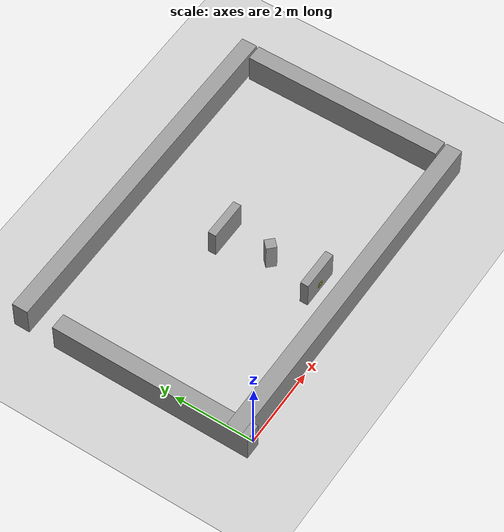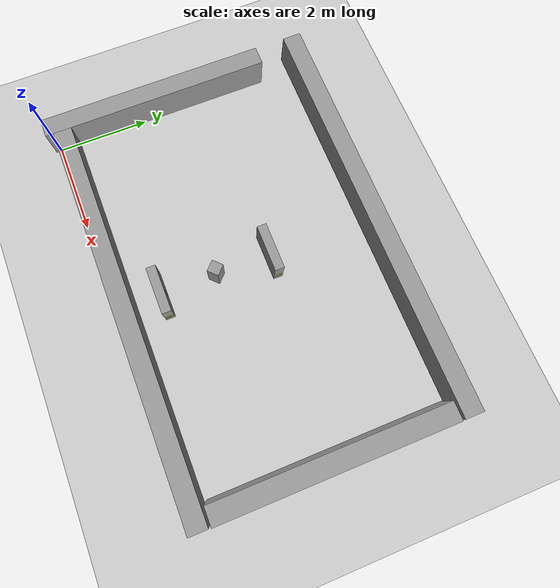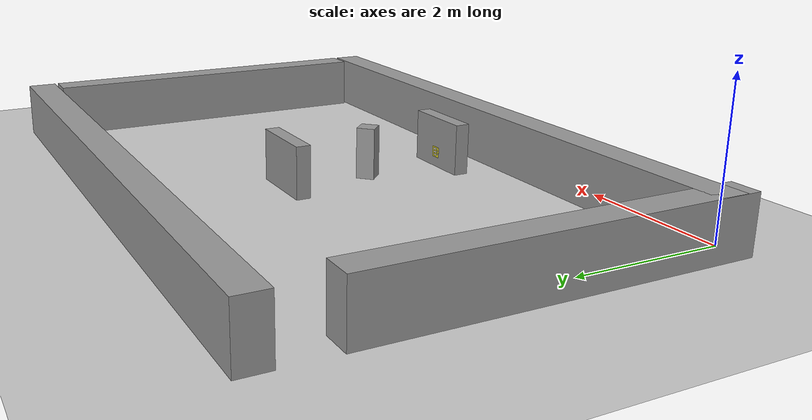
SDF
<sdf version="1.6">
 <world name="default">
  <model name="ground_plane">
   <static>1</static>
   <link name="link">
    <collision name="collision">
     <geometry><plane><normal>0 0 1</normal><size>100 100</size></plane></geometry>
     <surface><friction><ode><mu>100</mu><mu2>50</mu2></ode></friction></surface>
    </collision>
    <visual name="visual">
     <cast_shadows>0</cast_shadows>
     <geometry><plane><normal>0 0 1</normal><size>100 100</size></plane></geometry>
     <material>
      <script><uri>file://media/materials/scripts/gazebo.material</uri><name>Gazebo/Gray</name></script>
     </material>
    </visual>
   </link>
  </model>
  <model name="Untitled2">
   <pose>4.05 3 0 0 -0 0</pose>
   <link name="Wall_11">
    <collision name="Wall_11_Collision">
     <geometry><box><size>5 0.4 1</size></box></geometry>
     <pose>0 0 0.25 0 -0 0</pose>
    </collision>
    <visual name="Wall_11_Visual">
     <pose>0 0 0.25 0 -0 0</pose>
     <geometry><box><size>5 0.4 1</size></box></geometry>
     <material>
      <script><uri>file://media/materials/scripts/gazebo.material</uri><name>Gazebo/Gray</name></script>
      <ambient>1 1 1 1</ambient>
     </material>
     <meta><layer>0</layer></meta>
    </visual>
    <pose>-4.25 -0.62 0 0 -0 1.5708</pose>
   </link>
   <link name="Wall_13">
    <collision name="Wall_13_Collision">
     <geometry><box><size>5 0.4 1</size></box></geometry>
     <pose>0 0 0.25 0 -0 0</pose>
    </collision>
    <visual name="Wall_13_Visual">
     <pose>0 0 0.25 0 -0 0</pose>
     <geometry><box><size>5 0.4 1</size></box></geometry>
     <material>
      <script><uri>file://media/materials/scripts/gazebo.material</uri><name>Gazebo/Gray</name></script>
      <ambient>1 1 1 1</ambient>
     </material>
     <meta><layer>0</layer></meta>
    </visual>
    <pose>4.25 -0 0 0 -0 1.5708</pose>
   </link>
   <link name="Wall_15">
    <collision name="Wall_15_Collision">
     <geometry><box><size>8.88 0.4 1</size></box></geometry>
     <pose>0 0 0.25 0 -0 0</pose>
    </collision>
    <visual name="Wall_15_Visual">
     <pose>0 0 0.25 0 -0 0</pose>
     <geometry><box><size>8.88 0.4 1</size></box></geometry>
     <material>
      <script><uri>file://media/materials/scripts/gazebo.material</uri><name>Gazebo/Gray</name></script>
      <ambient>1 1 1 1</ambient>
     </material>
     <meta><layer>0</layer></meta>
    </visual>
    <pose>-0 2.75 0 0 -0 0</pose>
   </link>
   <link name="Wall_6">
    <collision name="Wall_6_Collision">
     <geometry><box><size>8.88 0.4 1</size></box></geometry>
     <pose>0 0 0.25 0 -0 0</pose>
    </collision>
    <visual name="Wall_6_Visual">
     <pose>0 0 0.25 0 -0 0</pose>
     <geometry><box><size>8.88 0.4 1</size></box></geometry>
     <material>
      <script><uri>file://media/materials/scripts/gazebo.material</uri><name>Gazebo/Gray</name></script>
      <ambient>1 1 1 1</ambient>
     </material>
     <meta><layer>0</layer></meta>
    </visual>
    <pose>-0 -2.75 0 0 -0 0</pose>
   </link>
   <static>1</static>
  </model>
  <model name="Untitled1_clone_0_clone_0">
   <pose>4.04 1.035 0 0 0 -1.5708</pose>
   <link name="Wall_0">
    <collision name="Wall_0_Collision">
     <geometry><box><size>1 0.2 1</size></box></geometry>
     <pose>0 0 0.2 0 -0 0</pose>
    </collision>
    <visual name="Wall_0_Visual">
     <pose>0 0 0.2 0 -0 0</pose>
     <geometry><box><size>1 0.2 1</size></box></geometry>
     <material>
      <script><uri>file://media/materials/scripts/gazebo.material</uri><name>Gazebo/Gray</name></script>
      <ambient>1 1 1 1</ambient>
     </material>
     <meta><layer>0</layer></meta>
    </visual>
    <pose>0 0 0 0 -0 1.5708</pose>
   </link>
   <static>1</static>
  </model>
  <model name="Untitled1_clone_0_clone_1">
   <pose>4.04 3.445 0 0 0 -1.5708</pose>
   <link name="Wall_0">
    <collision name="Wall_0_Collision">
     <geometry><box><size>1 0.2 1</size></box></geometry>
     <pose>0 0 0.2 0 -0 0</pose>
    </collision>
    <visual name="Wall_0_Visual">
     <pose>0 0 0.2 0 -0 0</pose>
     <geometry><box><size>1 0.2 1</size></box></geometry>
     <material>
      <script><uri>file://media/materials/scripts/gazebo.material</uri><name>Gazebo/Gray</name></script>
      <ambient>1 1 1 1</ambient>
     </material>
     <meta><layer>0</layer></meta>
    </visual>
    <pose>0 0 0 0 -0 1.5708</pose>
   </link>
   <static>1</static>
  </model>
  <model name="Untitled4">
   <pose>4.04 2.24 0 0 -0 0.785397</pose>
   <link name="Wall_19">
    <collision name="Wall_19_Collision">
     <geometry><box><size>0.25 0.25 1</size></box></geometry>
     <pose>0 0 0.2 0 -0 0</pose>
    </collision>
    <visual name="Wall_19_Visual">
     <pose>0 0 0.2 0 -0 0</pose>
     <geometry><box><size>0.25 0.25 1</size></box></geometry>
     <material>
      <script><uri>file://media/materials/scripts/gazebo.material</uri><name>Gazebo/Gray</name></script>
      <ambient>1 1 1 1</ambient>
     </material>
     <meta><layer>0</layer></meta>
    </visual>
   </link>
   <static>1</static>
  </model>
  <model name="labal_D">
   <link name="base">
    <inertial>
     <pose>-0.001086 -0.000137 -0.001593 0 -0 0</pose>
     <mass>0.0137688</mass>
     <inertia>
      <ixx>2.44128e-05</ixx>
      <ixy>-9.16282e-09</ixy>
      <ixz>4.39336e-07</ixz>
      <iyy>2.60674e-05</iyy>
      <iyz>-1.55543e-08</iyz>
      <izz>4.38445e-05</izz>
     </inertia>
    </inertial>
    <collision name="base_collision">
     <geometry>
      <mesh><scale>1 1 1</scale><uri>/home/tdt/catkin_ws/src/RoboRTS/small_car/meshes/base.STL</uri></mesh>
     </geometry>
    </collision>
    <collision name="base_fixed_joint_lump__labal_D_collision_1">
     <pose>0 0 0 1.5708 -0 0</pose>
     <geometry>
      <mesh><scale>1 1 1</scale><uri>/home/tdt/catkin_ws/src/RoboRTS/small_car/meshes/labal_D.STL</uri></mesh>
     </geometry>
    </collision>
    <visual name="base_visual">
     <geometry>
      <mesh><scale>1 1 1</scale><uri>/home/tdt/catkin_ws/src/RoboRTS/small_car/meshes/base.STL</uri></mesh>
     </geometry>
     <material>
      <script><name>Gazebo/Yellow</name><uri>file://media/materials/scripts/gazebo.material</uri></script>
     </material>
    </visual>
    <visual name="base_fixed_joint_lump__labal_D_visual_1">
     <pose>0 0 0 1.5708 -0 0</pose>
     <geometry>
      <mesh><scale>1 1 1</scale><uri>/home/tdt/catkin_ws/src/RoboRTS/small_car/meshes/labal_D.STL</uri></mesh>
     </geometry>
     <material>
      <script><name>Gazebo/White</name><uri>file://media/materials/scripts/gazebo.material</uri></script>
     </material>
    </visual>
   </link>
   <pose>4.04 0.935 0.2 0 -0 0</pose>
   <static>1</static>
  </model>
  <model name="labal_B">
   <link name="base">
    <inertial>
     <pose>-0.001086 -0.000137 -0.001593 0 -0 0</pose>
     <mass>0.0137688</mass>
     <inertia>
      <ixx>2.44128e-05</ixx>
      <ixy>-9.16282e-09</ixy>
      <ixz>4.39336e-07</ixz>
      <iyy>2.60674e-05</iyy>
      <iyz>-1.55543e-08</iyz>
      <izz>4.38445e-05</izz>
     </inertia>
    </inertial>
    <collision name="base_collision">
     <geometry>
      <mesh><scale>1 1 1</scale><uri>/home/tdt/catkin_ws/src/RoboRTS/small_car/meshes/base.STL</uri></mesh>
     </geometry>
    </collision>
    <collision name="base_fixed_joint_lump__labal_B_collision_1">
     <pose>0 0 0 1.5708 -0 0</pose>
     <geometry>
      <mesh><scale>1 1 1</scale><uri>/home/tdt/catkin_ws/src/RoboRTS/small_car/meshes/labal_B.STL</uri></mesh>
     </geometry>
    </collision>
    <visual name="base_visual">
     <geometry>
      <mesh><scale>1 1 1</scale><uri>/home/tdt/catkin_ws/src/RoboRTS/small_car/meshes/base.STL</uri></mesh>
     </geometry>
     <material>
      <script><name>Gazebo/Yellow</name><uri>file://media/materials/scripts/gazebo.material</uri></script>
     </material>
    </visual>
    <visual name="base_fixed_joint_lump__labal_B_visual_1">
     <pose>0 0 0 1.5708 -0 0</pose>
     <geometry>
      <mesh><scale>1 1 1</scale><uri>/home/tdt/catkin_ws/src/RoboRTS/small_car/meshes/labal_B.STL</uri></mesh>
     </geometry>
     <material>
      <script><name>Gazebo/White</name><uri>file://media/materials/scripts/gazebo.material</uri></script>
     </material>
    </visual>
   </link>
   <pose>4.04 1.135 0.2 0 -0 3.14</pose>
   <static>1</static>
  </model>
  <model name="labal_C">
   <link name="base">
    <inertial>
     <pose>-0.001086 -0.000137 -0.001593 0 -0 0</pose>
     <mass>0.0137688</mass>
     <inertia>
      <ixx>2.44128e-05</ixx>
      <ixy>-9.16282e-09</ixy>
      <ixz>4.39336e-07</ixz>
      <iyy>2.60674e-05</iyy>
      <iyz>-1.55543e-08</iyz>
      <izz>4.38445e-05</izz>
     </inertia>
    </inertial>
    <collision name="base_collision">
     <geometry>
      <mesh><scale>1 1 1</scale><uri>/home/tdt/catkin_ws/src/RoboRTS/small_car/meshes/base.STL</uri></mesh>
     </geometry>
    </collision>
    <collision name="base_fixed_joint_lump__labal_C_collision_1">
     <pose>0 0 0 1.5708 -0 0</pose>
     <geometry>
      <mesh><scale>1 1 1</scale><uri>/home/tdt/catkin_ws/src/RoboRTS/small_car/meshes/labal_C.STL</uri></mesh>
     </geometry>
    </collision>
    <visual name="base_visual">
     <geometry>
      <mesh><scale>1 1 1</scale><uri>/home/tdt/catkin_ws/src/RoboRTS/small_car/meshes/base.STL</uri></mesh>
     </geometry>
     <material>
      <script><name>Gazebo/Yellow</name><uri>file://media/materials/scripts/gazebo.material</uri></script>
     </material>
    </visual>
    <visual name="base_fixed_joint_lump__labal_C_visual_1">
     <pose>0 0 0 1.5708 -0 0</pose>
     <geometry>
      <mesh><scale>1 1 1</scale><uri>/home/tdt/catkin_ws/src/RoboRTS/small_car/meshes/labal_C.STL</uri></mesh>
     </geometry>
     <material>
      <script><name>Gazebo/White</name><uri>file://media/materials/scripts/gazebo.material</uri></script>
     </material>
    </visual>
   </link>
   <pose>4.54 1.035 0.2 0 -0 1.57</pose>
   <static>1</static>
  </model>
  <model name="labal_M">
   <link name="base">
    <inertial>
     <pose>-0.001086 -0.000137 -0.001593 0 -0 0</pose>
     <mass>0.0137688</mass>
     <inertia>
      <ixx>2.44128e-05</ixx>
      <ixy>-9.16282e-09</ixy>
      <ixz>4.39336e-07</ixz>
      <iyy>2.60674e-05</iyy>
      <iyz>-1.55543e-08</iyz>
      <izz>4.38445e-05</izz>
     </inertia>
    </inertial>
    <collision name="base_collision">
     <geometry>
      <mesh><scale>1 1 1</scale><uri>/home/tdt/catkin_ws/src/RoboRTS/small_car/meshes/base.STL</uri></mesh>
     </geometry>
    </collision>
    <collision name="base_fixed_joint_lump__labal_M_collision_1">
     <pose>0 0 0 1.5708 -0 0</pose>
     <geometry>
      <mesh><scale>1 1 1</scale><uri>/home/tdt/catkin_ws/src/RoboRTS/small_car/meshes/labal_M.STL</uri></mesh>
     </geometry>
    </collision>
    <visual name="base_visual">
     <geometry>
      <mesh><scale>1 1 1</scale><uri>/home/tdt/catkin_ws/src/RoboRTS/small_car/meshes/base.STL</uri></mesh>
     </geometry>
     <material>
      <script><name>Gazebo/Yellow</name><uri>file://media/materials/scripts/gazebo.material</uri></script>
     </material>
    </visual>
    <visual name="base_fixed_joint_lump__labal_M_visual_1">
     <pose>0 0 0 1.5708 -0 0</pose>
     <geometry>
      <mesh><scale>1 1 1</scale><uri>/home/tdt/catkin_ws/src/RoboRTS/small_car/meshes/labal_M.STL</uri></mesh>
     </geometry>
     <material>
      <script><name>Gazebo/White</name><uri>file://media/materials/scripts/gazebo.material</uri></script>
     </material>
    </visual>
   </link>
   <pose>4.54 3.445 0.2 0 -0 1.57</pose>
   <static>1</static>
  </model>
 </world>
</sdf>
